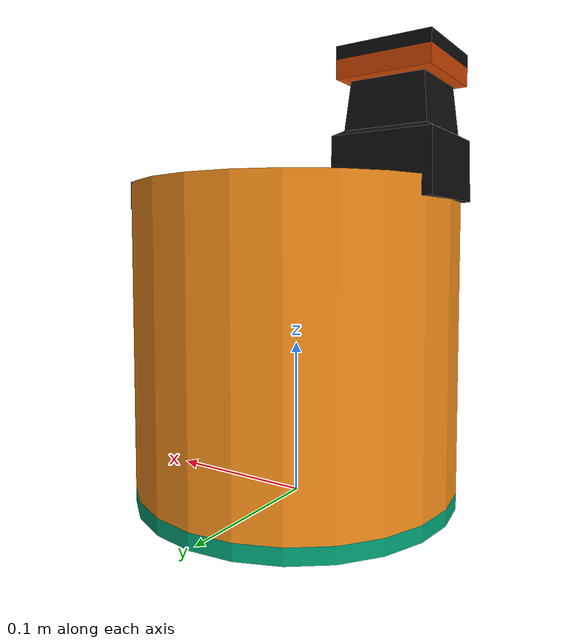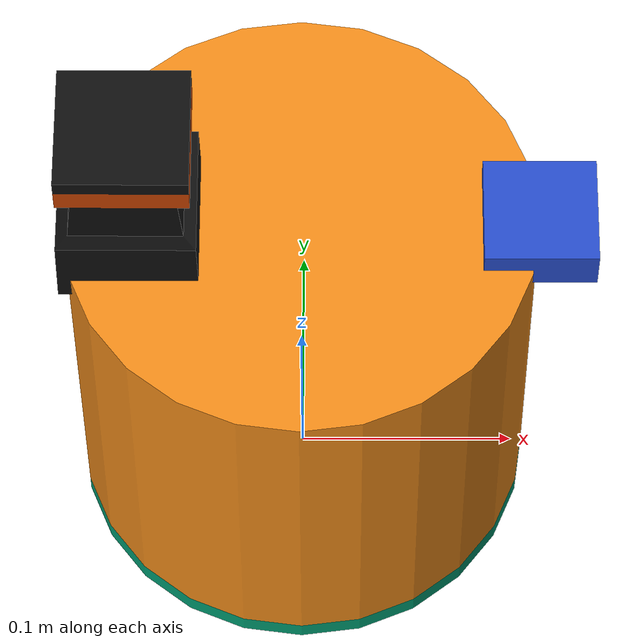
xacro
<?xml version="1.0" encoding="utf-8"?>

<robot xmlns:xacro="http://www.ros.org/wiki/xacro" name="simple_omni_robot">
  <!-- robot_state_publisher no longer support tf_prefix in ROS Noetic...-->
  <xacro:arg name="link_prefix" default="" />
  <xacro:arg name="id_num" default="" />

  <xacro:include filename="$(find hector_sensors_description)/urdf/hokuyo_utm30lx.urdf.xacro" />
  <xacro:include filename="$(find robot_description)/urdf/simple-omni-robot.gazebo" />
  <!-- According TB3 -->
  <xacro:property name="RADIUS" value="0.105" />
  <xacro:property name="HEIGHT" value="0.192" />

  <xacro:hokuyo_utm30lx name="$(arg link_prefix)/lidar" parent="$(arg link_prefix)/base_link" ros_topic="laser"
                        update_rate="30" ray_count="270"
                        min_angle="-135" max_angle="135">
  <!-- Place lidar on the top and back of robot, lidar size is W60xD60xH87mm -->
  <origin xyz="${RADIUS*-1+0.03} 0.0 ${HEIGHT/2+0.0435}" rpy="0 0 0" />
  </xacro:hokuyo_utm30lx>

  <!-- Links -->
  <link name="$(arg link_prefix)/head">
    <visual>
      <origin xyz="0 0 0" rpy="0 0 0" />
      <geometry>
        <box size="0.05 0.05 0.02" />
      </geometry>
    </visual>
  </link>

  <link name="$(arg link_prefix)/base_footprint">
    <visual>
      <origin xyz="0 0 0.005" rpy="0 0 0" />
      <geometry>
        <cylinder radius="${RADIUS}" length="0.01" />
      </geometry>
    </visual>
  </link>

  <link name="$(arg link_prefix)/base_link">
    <inertial>
      <origin xyz="0 0 0" rpy="0 0 0" />
      <mass value="50.0" />
      <!-- for a cylinder: ixx = 0.083 * mass * (3*r*r + h*h), when mass is 1, equal to 0.003974787 -->
      <!-- for a cylinder: ixy = 0 -->
      <!-- for a cylinder: ixz = 0 -->
      <!-- for a cylinder: iyy = 0.083 * mass * (3*r*r + h*h), when mass is 1, equal to 0.003974787 -->
      <!-- for a cylinder: iyz = 0 -->
      <!-- for a cylinder: izz = 0.5 * mass * (r*r, when mass is 1, equal to 0.0055125 -->)
      <!-- http://gazebosim.org/tutorials?tut=inertia&cat=build_robot -->
      <!-- https://en.wikipedia.org/wiki/List_of_moments_of_inertia -->
      <inertia
        ixx="50.0"
        ixy="0.0"
        ixz="0.0"
        iyy="50.0"
        iyz="0.0"
        izz="50.0" />
    </inertial>

    <visual>
      <geometry>
        <cylinder radius="${RADIUS}" length="${HEIGHT}" />
      </geometry>
    </visual>

    <collision name="baselink">
      <origin xyz="0 0 0" rpy="0 0 0" />
      <geometry>
        <cylinder radius="${RADIUS}" length="${HEIGHT+0.05}" />
      </geometry>
    </collision>
  </link>

  <!-- Joints -->
  <joint name="head_joint" type="fixed">
    <origin xyz="${RADIUS} 0 ${HEIGHT/2}" rpy="0 0 0" />
    <parent link="$(arg link_prefix)/base_link"/>
    <child link="$(arg link_prefix)/head" />
  </joint>

  <joint name="base_link_joint" type="fixed">
    <origin xyz="0.0 0 ${HEIGHT/2+0.01}" rpy="0 0 0" />
    <parent link="$(arg link_prefix)/base_footprint"/>
    <child link="$(arg link_prefix)/base_link" />
  </joint>

  <xacro:simple_omni_robot_gazebo prefix="$(arg link_prefix)" id_num="$(arg id_num)" />
</robot>

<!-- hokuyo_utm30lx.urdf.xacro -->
<robot xmlns:xacro="http://ros.org/wiki/xacro">
    <xacro:property name="M_PI" value="3.1415926535897931" />

    <xacro:macro name="hokuyo_utm30lx_model" params="name parent *origin">
      <joint name="${name}_joint" type="fixed">
        <xacro:insert_block name="origin" />
        <parent link="${parent}"/>
        <child link="${name}_frame"/>
      </joint>

      <link name="${name}_frame">
        <inertial>
          <mass value="0.270" />
          <origin xyz="0 0 0" rpy="0 0 0" />
          <inertia ixx="2.632e-4" ixy="0" ixz="0" iyy="2.632e-4" iyz="0" izz="1.62e-4" />
        </inertial>
        <visual>
          <origin xyz="0 0 0" rpy="0 0 0" />
          <geometry>
          <mesh filename="package://hector_sensors_description/meshes/hokuyo_utm30lx/hokuyo_utm_30lx$(optenv TEST_SELF_FILTER).dae"/>
        </geometry>
        </visual>
        <collision>
          <origin xyz="0.00 0 0.0" rpy="0 ${0.5 * M_PI} 0" />
          <geometry>
	    <cylinder length="0.079" radius="0.0735"/>
        </geometry>
        </collision>
      </link>
    </xacro:macro>

    <xacro:macro name="hokuyo_utm30lx" params="name parent *origin ros_topic update_rate ray_count min_angle max_angle">
      <xacro:hokuyo_utm30lx_model name="${name}" parent="${parent}">
        <xacro:insert_block name="origin" />
      </xacro:hokuyo_utm30lx_model>

      <gazebo reference="${name}_frame">
        <sensor type="ray" name="${name}">
          <always_on>true</always_on>
          <update_rate>${update_rate}</update_rate>
          <pose>0 0 0 0 0 0</pose>
          <visualize>false</visualize>
          <ray>
            <scan>
              <horizontal>
                <samples>${ray_count}</samples>
                <resolution>1</resolution>
                <min_angle>${min_angle * M_PI/180}</min_angle>
                <max_angle>${max_angle * M_PI/180}</max_angle>
              </horizontal>
            </scan>
            <range>
              <min>0.2</min>
              <max>30.0</max>
              <resolution>0.01</resolution>
            </range>
            <noise>
              <type>gaussian</type>
              <mean>0.0</mean>
              <stddev>0.004</stddev>
            </noise>
          </ray>
          <plugin name="gazebo_ros_${name}_controller" filename="libgazebo_ros_laser.so">
            <gaussianNoise>0.005</gaussianNoise>
            <hokuyoMinIntensity>2000</hokuyoMinIntensity>
            <alwaysOn>true</alwaysOn>
	    <robotNamespace>$(arg robot_name)/sensor/</robotNamespace>
            <updateRate>${update_rate}</updateRate>
            <topicName>${ros_topic}</topicName>
            <frameName>${name}_frame</frameName>
          </plugin>
        </sensor>
      </gazebo>
    </xacro:macro>

    <xacro:macro name="hokuyo_utm30lx_gpu" params="name parent *origin ros_topic update_rate ray_count min_angle max_angle">
      <xacro:hokuyo_utm30lx_model name="${name}" parent="${parent}">
        <xacro:insert_block name="origin" />
      </xacro:hokuyo_utm30lx_model>

      <gazebo reference="${name}_frame">
        <sensor type="gpu_ray" name="${name}">
          <update_rate>${update_rate}</update_rate>
          <pose>0 0 0 0 0 0</pose>
          <visualize>false</visualize>
          <ray>
            <scan>
              <horizontal>
                <samples>${ray_count}</samples>
                <resolution>1</resolution>
                <min_angle>${min_angle * M_PI/180}</min_angle>
                <max_angle>${max_angle * M_PI/180}</max_angle>
              </horizontal>
            </scan>
            <range>
              <min>0.2</min>
              <max>30.0</max>
              <resolution>0.01</resolution>
            </range>
            <noise>
              <type>gaussian</type>
              <mean>0.0</mean>
              <stddev>0.004</stddev>
            </noise>
          </ray>
          <plugin name="gazebo_ros_${name}_controller" filename="libgazebo_ros_gpu_laser.so">
            <topicName>${ros_topic}</topicName>
            <frameName>${name}_frame</frameName>
          </plugin>
        </sensor>
      </gazebo>
    </xacro:macro>
</robot>
